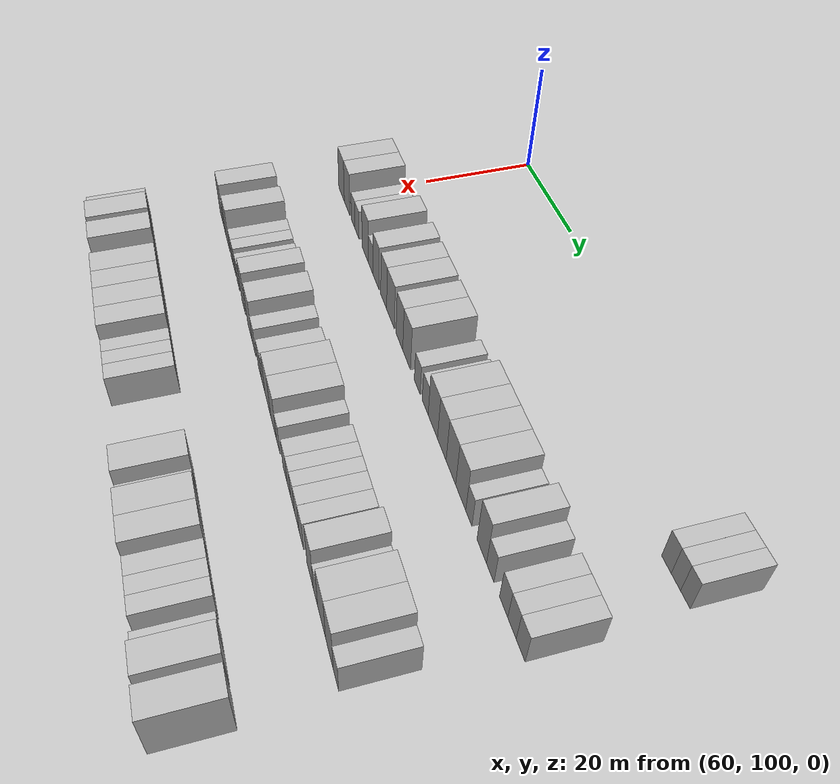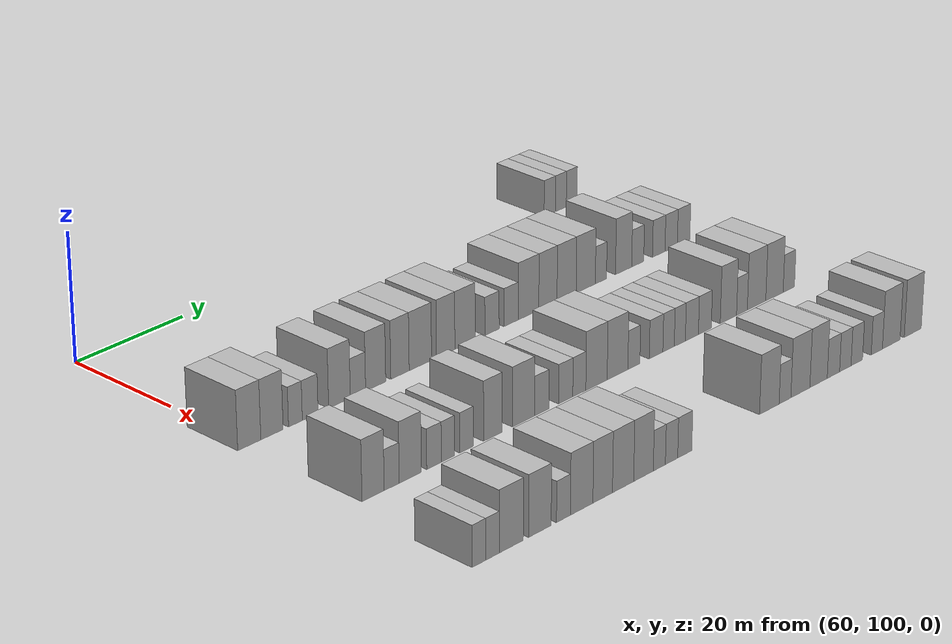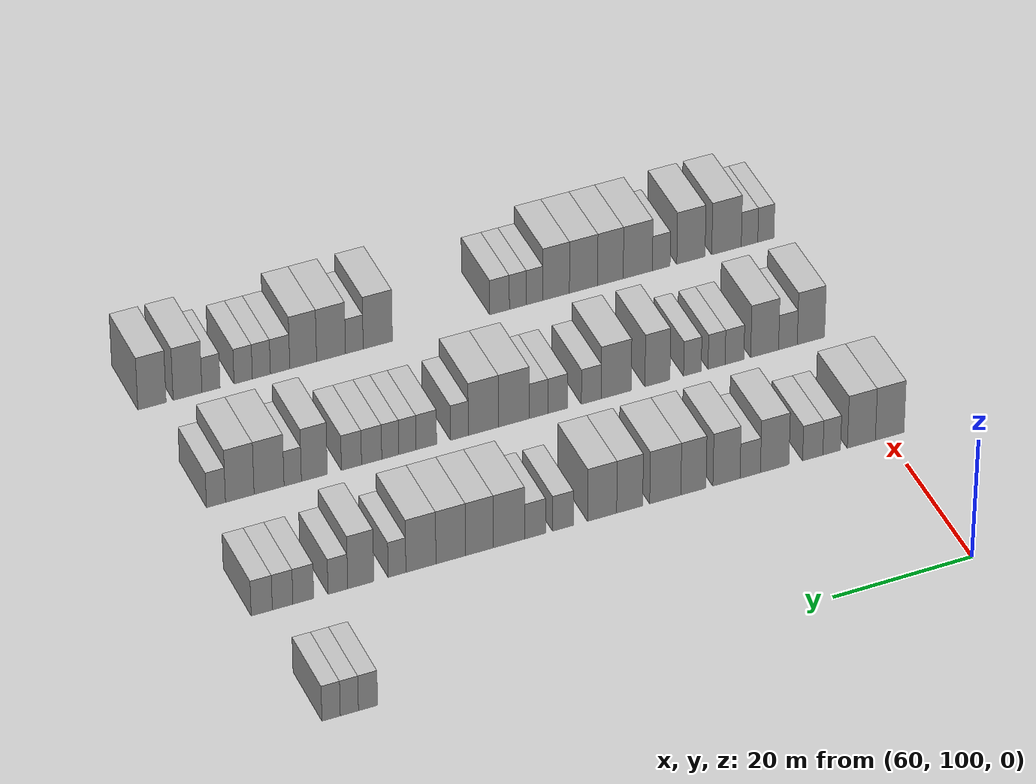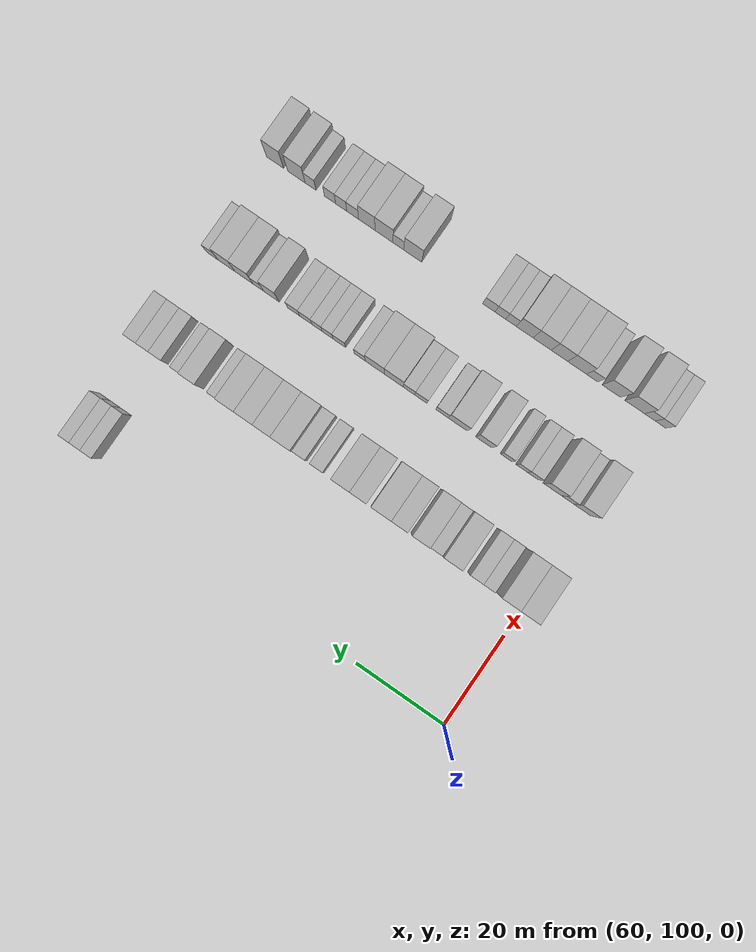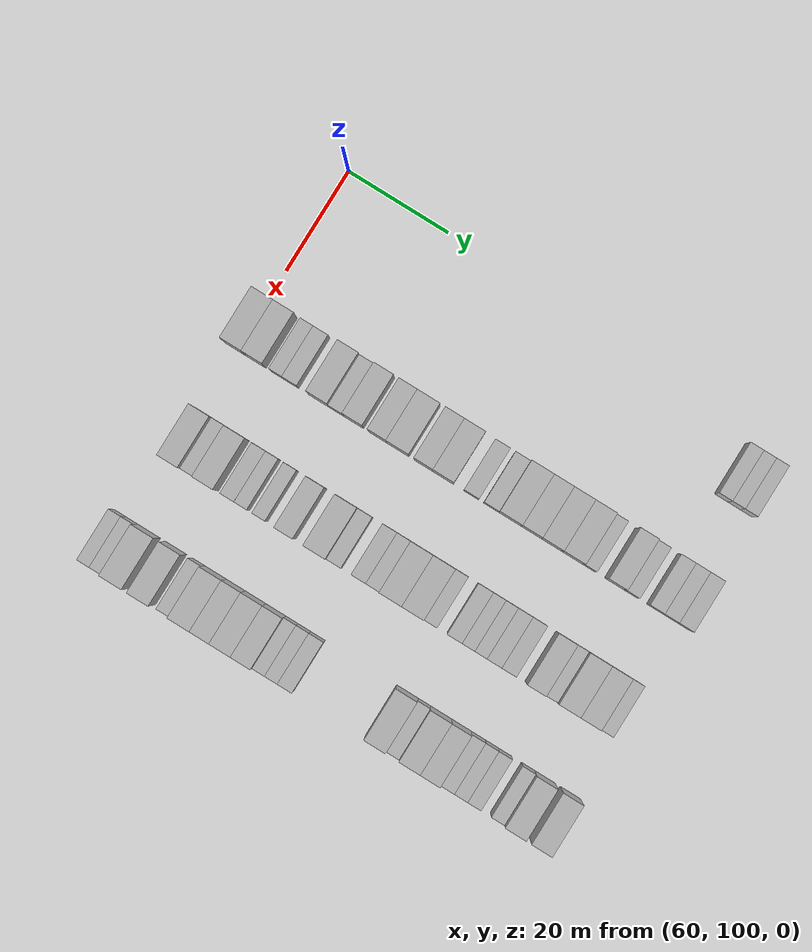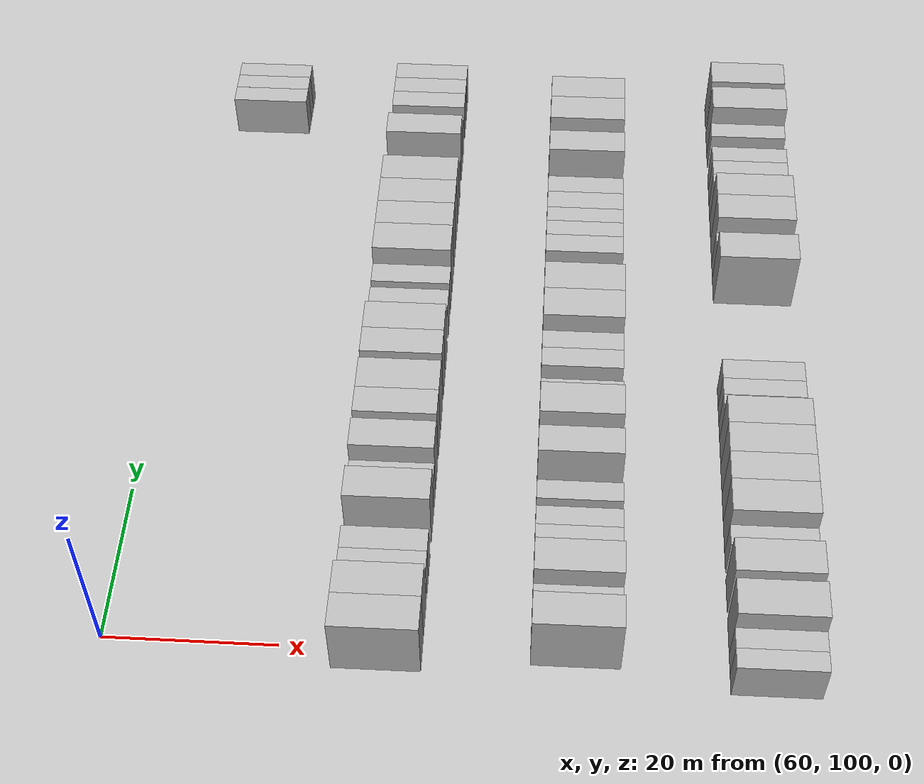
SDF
<sdf version="1.6">
 <world name="default">
  <model name="building_527">
   <static>1</static>
   <pose>69.0000 183.1466 0 0.000000 0.000000 0.000000</pose>
   <link name="link">
    <pose>0 0 3.00 0 0 0</pose>
    <collision name="collision"><geometry><box><size>10.0000 2.6130 6.0000</size></box></geometry></collision>
    <visual name="visual">
     <cast_shadows>0</cast_shadows>
     <geometry><box><size>10.0000 2.6130 6.0000</size></box></geometry>
     <material>
      <script>
       <uri>model://HANNAS_wall/materials/scripts</uri>
       <uri>model://HANNAS_wall/materials/textures</uri>
       <name>vrc/HANNAS_wall</name>
      </script>
     </material>
    </visual>
   </link>
  </model>
  <model name="building_528">
   <static>1</static>
   <pose>69.0000 185.6921 0 0.000000 0.000000 0.000000</pose>
   <link name="link">
    <pose>0 0 3.00 0 0 0</pose>
    <collision name="collision"><geometry><box><size>10.0000 2.4778 6.0000</size></box></geometry></collision>
    <visual name="visual">
     <cast_shadows>0</cast_shadows>
     <geometry><box><size>10.0000 2.4778 6.0000</size></box></geometry>
     <material>
      <script>
       <uri>model://HANNAS_wall/materials/scripts</uri>
       <uri>model://HANNAS_wall/materials/textures</uri>
       <name>vrc/HANNAS_wall</name>
      </script>
     </material>
    </visual>
   </link>
  </model>
  <model name="building_529">
   <static>1</static>
   <pose>69.0000 188.1835 0 0.000000 0.000000 0.000000</pose>
   <link name="link">
    <pose>0 0 3.00 0 0 0</pose>
    <collision name="collision"><geometry><box><size>10.0000 2.5051 6.0000</size></box></geometry></collision>
    <visual name="visual">
     <cast_shadows>0</cast_shadows>
     <geometry><box><size>10.0000 2.5051 6.0000</size></box></geometry>
     <material>
      <script>
       <uri>model://HANNAS_wall/materials/scripts</uri>
       <uri>model://HANNAS_wall/materials/textures</uri>
       <name>vrc/HANNAS_wall</name>
      </script>
     </material>
    </visual>
   </link>
  </model>
  <model name="building_701">
   <static>1</static>
   <pose>91.0000 99.6610 0 0.000000 0.000000 0.000000</pose>
   <link name="link">
    <pose>0 0 4.50 0 0 0</pose>
    <collision name="collision"><geometry><box><size>10.0000 4.1937 9.0000</size></box></geometry></collision>
    <visual name="visual">
     <cast_shadows>0</cast_shadows>
     <geometry><box><size>10.0000 4.1937 9.0000</size></box></geometry>
     <material>
      <script>
       <uri>model://HANNAS_wall/materials/scripts</uri>
       <uri>model://HANNAS_wall/materials/textures</uri>
       <name>vrc/HANNAS_wall</name>
      </script>
     </material>
    </visual>
   </link>
  </model>
  <model name="building_702">
   <static>1</static>
   <pose>91.0000 103.8036 0 0.000000 0.000000 0.000000</pose>
   <link name="link">
    <pose>0 0 4.50 0 0 0</pose>
    <collision name="collision"><geometry><box><size>10.0000 4.0915 9.0000</size></box></geometry></collision>
    <visual name="visual">
     <cast_shadows>0</cast_shadows>
     <geometry><box><size>10.0000 4.0915 9.0000</size></box></geometry>
     <material>
      <script>
       <uri>model://HANNAS_wall/materials/scripts</uri>
       <uri>model://HANNAS_wall/materials/textures</uri>
       <name>vrc/HANNAS_wall</name>
      </script>
     </material>
    </visual>
   </link>
  </model>
  <model name="building_703">
   <static>1</static>
   <pose>91.0000 108.1335 0 0.000000 0.000000 0.000000</pose>
   <link name="link">
    <pose>0 0 3.00 0 0 0</pose>
    <collision name="collision"><geometry><box><size>10.0000 2.5683 6.0000</size></box></geometry></collision>
    <visual name="visual">
     <cast_shadows>0</cast_shadows>
     <geometry><box><size>10.0000 2.5683 6.0000</size></box></geometry>
     <material>
      <script>
       <uri>model://HANNAS_wall/materials/scripts</uri>
       <uri>model://HANNAS_wall/materials/textures</uri>
       <name>vrc/HANNAS_wall</name>
      </script>
     </material>
    </visual>
   </link>
  </model>
  <model name="building_704">
   <static>1</static>
   <pose>91.0000 110.8917 0 0.000000 0.000000 0.000000</pose>
   <link name="link">
    <pose>0 0 3.00 0 0 0</pose>
    <collision name="collision"><geometry><box><size>10.0000 2.9481 6.0000</size></box></geometry></collision>
    <visual name="visual">
     <cast_shadows>0</cast_shadows>
     <geometry><box><size>10.0000 2.9481 6.0000</size></box></geometry>
     <material>
      <script>
       <uri>model://HANNAS_wall/materials/scripts</uri>
       <uri>model://HANNAS_wall/materials/textures</uri>
       <name>vrc/HANNAS_wall</name>
      </script>
     </material>
    </visual>
   </link>
  </model>
  <model name="building_705">
   <static>1</static>
   <pose>91.0000 116.4317 0 0.000000 0.000000 0.000000</pose>
   <link name="link">
    <pose>0 0 4.50 0 0 0</pose>
    <collision name="collision"><geometry><box><size>10.0000 4.1319 9.0000</size></box></geometry></collision>
    <visual name="visual">
     <cast_shadows>0</cast_shadows>
     <geometry><box><size>10.0000 4.1319 9.0000</size></box></geometry>
     <material>
      <script>
       <uri>model://HANNAS_wall/materials/scripts</uri>
       <uri>model://HANNAS_wall/materials/textures</uri>
       <name>vrc/HANNAS_wall</name>
      </script>
     </material>
    </visual>
   </link>
  </model>
  <model name="building_706">
   <static>1</static>
   <pose>91.0000 119.9699 0 0.000000 0.000000 0.000000</pose>
   <link name="link">
    <pose>0 0 3.00 0 0 0</pose>
    <collision name="collision"><geometry><box><size>10.0000 2.9445 6.0000</size></box></geometry></collision>
    <visual name="visual">
     <cast_shadows>0</cast_shadows>
     <geometry><box><size>10.0000 2.9445 6.0000</size></box></geometry>
     <material>
      <script>
       <uri>model://HANNAS_wall/materials/scripts</uri>
       <uri>model://HANNAS_wall/materials/textures</uri>
       <name>vrc/HANNAS_wall</name>
      </script>
     </material>
    </visual>
   </link>
  </model>
  <model name="building_707">
   <static>1</static>
   <pose>91.0000 123.3985 0 0.000000 0.000000 0.000000</pose>
   <link name="link">
    <pose>0 0 4.50 0 0 0</pose>
    <collision name="collision"><geometry><box><size>10.0000 3.9127 9.0000</size></box></geometry></collision>
    <visual name="visual">
     <cast_shadows>0</cast_shadows>
     <geometry><box><size>10.0000 3.9127 9.0000</size></box></geometry>
     <material>
      <script>
       <uri>model://HANNAS_wall/materials/scripts</uri>
       <uri>model://HANNAS_wall/materials/textures</uri>
       <name>vrc/HANNAS_wall</name>
      </script>
     </material>
    </visual>
   </link>
  </model>
  <model name="building_708">
   <static>1</static>
   <pose>91.0000 128.1646 0 0.000000 0.000000 0.000000</pose>
   <link name="link">
    <pose>0 0 4.50 0 0 0</pose>
    <collision name="collision"><geometry><box><size>10.0000 3.6194 9.0000</size></box></geometry></collision>
    <visual name="visual">
     <cast_shadows>0</cast_shadows>
     <geometry><box><size>10.0000 3.6194 9.0000</size></box></geometry>
     <material>
      <script>
       <uri>model://HANNAS_wall/materials/scripts</uri>
       <uri>model://HANNAS_wall/materials/textures</uri>
       <name>vrc/HANNAS_wall</name>
      </script>
     </material>
    </visual>
   </link>
  </model>
  <model name="building_709">
   <static>1</static>
   <pose>91.0000 132.2053 0 0.000000 0.000000 0.000000</pose>
   <link name="link">
    <pose>0 0 4.50 0 0 0</pose>
    <collision name="collision"><geometry><box><size>10.0000 4.4620 9.0000</size></box></geometry></collision>
    <visual name="visual">
     <cast_shadows>0</cast_shadows>
     <geometry><box><size>10.0000 4.4620 9.0000</size></box></geometry>
     <material>
      <script>
       <uri>model://HANNAS_wall/materials/scripts</uri>
       <uri>model://HANNAS_wall/materials/textures</uri>
       <name>vrc/HANNAS_wall</name>
      </script>
     </material>
    </visual>
   </link>
  </model>
  <model name="building_710">
   <static>1</static>
   <pose>91.0000 137.3006 0 0.000000 0.000000 0.000000</pose>
   <link name="link">
    <pose>0 0 4.50 0 0 0</pose>
    <collision name="collision"><geometry><box><size>10.0000 3.7286 9.0000</size></box></geometry></collision>
    <visual name="visual">
     <cast_shadows>0</cast_shadows>
     <geometry><box><size>10.0000 3.7286 9.0000</size></box></geometry>
     <material>
      <script>
       <uri>model://HANNAS_wall/materials/scripts</uri>
       <uri>model://HANNAS_wall/materials/textures</uri>
       <name>vrc/HANNAS_wall</name>
      </script>
     </material>
    </visual>
   </link>
  </model>
  <model name="building_711">
   <static>1</static>
   <pose>91.0000 141.2422 0 0.000000 0.000000 0.000000</pose>
   <link name="link">
    <pose>0 0 4.50 0 0 0</pose>
    <collision name="collision"><geometry><box><size>10.0000 4.1545 9.0000</size></box></geometry></collision>
    <visual name="visual">
     <cast_shadows>0</cast_shadows>
     <geometry><box><size>10.0000 4.1545 9.0000</size></box></geometry>
     <material>
      <script>
       <uri>model://HANNAS_wall/materials/scripts</uri>
       <uri>model://HANNAS_wall/materials/textures</uri>
       <name>vrc/HANNAS_wall</name>
      </script>
     </material>
    </visual>
   </link>
  </model>
  <model name="building_712">
   <static>1</static>
   <pose>91.0000 146.8055 0 0.000000 0.000000 0.000000</pose>
   <link name="link">
    <pose>0 0 3.00 0 0 0</pose>
    <collision name="collision"><geometry><box><size>10.0000 2.9721 6.0000</size></box></geometry></collision>
    <visual name="visual">
     <cast_shadows>0</cast_shadows>
     <geometry><box><size>10.0000 2.9721 6.0000</size></box></geometry>
     <material>
      <script>
       <uri>model://HANNAS_wall/materials/scripts</uri>
       <uri>model://HANNAS_wall/materials/textures</uri>
       <name>vrc/HANNAS_wall</name>
      </script>
     </material>
    </visual>
   </link>
  </model>
  <model name="building_713">
   <static>1</static>
   <pose>91.0000 150.7829 0 0.000000 0.000000 0.000000</pose>
   <link name="link">
    <pose>0 0 3.00 0 0 0</pose>
    <collision name="collision"><geometry><box><size>10.0000 2.9826 6.0000</size></box></geometry></collision>
    <visual name="visual">
     <cast_shadows>0</cast_shadows>
     <geometry><box><size>10.0000 2.9826 6.0000</size></box></geometry>
     <material>
      <script>
       <uri>model://HANNAS_wall/materials/scripts</uri>
       <uri>model://HANNAS_wall/materials/textures</uri>
       <name>vrc/HANNAS_wall</name>
      </script>
     </material>
    </visual>
   </link>
  </model>
  <model name="building_714">
   <static>1</static>
   <pose>91.0000 154.4769 0 0.000000 0.000000 0.000000</pose>
   <link name="link">
    <pose>0 0 4.50 0 0 0</pose>
    <collision name="collision"><geometry><box><size>10.0000 4.4055 9.0000</size></box></geometry></collision>
    <visual name="visual">
     <cast_shadows>0</cast_shadows>
     <geometry><box><size>10.0000 4.4055 9.0000</size></box></geometry>
     <material>
      <script>
       <uri>model://HANNAS_wall/materials/scripts</uri>
       <uri>model://HANNAS_wall/materials/textures</uri>
       <name>vrc/HANNAS_wall</name>
      </script>
     </material>
    </visual>
   </link>
  </model>
  <model name="building_715">
   <static>1</static>
   <pose>91.0000 158.6403 0 0.000000 0.000000 0.000000</pose>
   <link name="link">
    <pose>0 0 4.50 0 0 0</pose>
    <collision name="collision"><geometry><box><size>10.0000 3.9213 9.0000</size></box></geometry></collision>
    <visual name="visual">
     <cast_shadows>0</cast_shadows>
     <geometry><box><size>10.0000 3.9213 9.0000</size></box></geometry>
     <material>
      <script>
       <uri>model://HANNAS_wall/materials/scripts</uri>
       <uri>model://HANNAS_wall/materials/textures</uri>
       <name>vrc/HANNAS_wall</name>
      </script>
     </material>
    </visual>
   </link>
  </model>
  <model name="building_716">
   <static>1</static>
   <pose>91.0000 162.6818 0 0.000000 0.000000 0.000000</pose>
   <link name="link">
    <pose>0 0 4.50 0 0 0</pose>
    <collision name="collision"><geometry><box><size>10.0000 4.1617 9.0000</size></box></geometry></collision>
    <visual name="visual">
     <cast_shadows>0</cast_shadows>
     <geometry><box><size>10.0000 4.1617 9.0000</size></box></geometry>
     <material>
      <script>
       <uri>model://HANNAS_wall/materials/scripts</uri>
       <uri>model://HANNAS_wall/materials/textures</uri>
       <name>vrc/HANNAS_wall</name>
      </script>
     </material>
    </visual>
   </link>
  </model>
  <model name="building_717">
   <static>1</static>
   <pose>91.0000 166.8731 0 0.000000 0.000000 0.000000</pose>
   <link name="link">
    <pose>0 0 4.50 0 0 0</pose>
    <collision name="collision"><geometry><box><size>10.0000 4.2209 9.0000</size></box></geometry></collision>
    <visual name="visual">
     <cast_shadows>0</cast_shadows>
     <geometry><box><size>10.0000 4.2209 9.0000</size></box></geometry>
     <material>
      <script>
       <uri>model://HANNAS_wall/materials/scripts</uri>
       <uri>model://HANNAS_wall/materials/textures</uri>
       <name>vrc/HANNAS_wall</name>
      </script>
     </material>
    </visual>
   </link>
  </model>
  <model name="building_718">
   <static>1</static>
   <pose>91.0000 170.2258 0 0.000000 0.000000 0.000000</pose>
   <link name="link">
    <pose>0 0 3.00 0 0 0</pose>
    <collision name="collision"><geometry><box><size>10.0000 2.4843 6.0000</size></box></geometry></collision>
    <visual name="visual">
     <cast_shadows>0</cast_shadows>
     <geometry><box><size>10.0000 2.4843 6.0000</size></box></geometry>
     <material>
      <script>
       <uri>model://HANNAS_wall/materials/scripts</uri>
       <uri>model://HANNAS_wall/materials/textures</uri>
       <name>vrc/HANNAS_wall</name>
      </script>
     </material>
    </visual>
   </link>
  </model>
  <model name="building_719">
   <static>1</static>
   <pose>91.0000 175.2902 0 0.000000 0.000000 0.000000</pose>
   <link name="link">
    <pose>0 0 4.50 0 0 0</pose>
    <collision name="collision"><geometry><box><size>10.0000 3.6445 9.0000</size></box></geometry></collision>
    <visual name="visual">
     <cast_shadows>0</cast_shadows>
     <geometry><box><size>10.0000 3.6445 9.0000</size></box></geometry>
     <material>
      <script>
       <uri>model://HANNAS_wall/materials/scripts</uri>
       <uri>model://HANNAS_wall/materials/textures</uri>
       <name>vrc/HANNAS_wall</name>
      </script>
     </material>
    </visual>
   </link>
  </model>
  <model name="building_720">
   <static>1</static>
   <pose>91.0000 178.4821 0 0.000000 0.000000 0.000000</pose>
   <link name="link">
    <pose>0 0 3.00 0 0 0</pose>
    <collision name="collision"><geometry><box><size>10.0000 2.7392 6.0000</size></box></geometry></collision>
    <visual name="visual">
     <cast_shadows>0</cast_shadows>
     <geometry><box><size>10.0000 2.7392 6.0000</size></box></geometry>
     <material>
      <script>
       <uri>model://HANNAS_wall/materials/scripts</uri>
       <uri>model://HANNAS_wall/materials/textures</uri>
       <name>vrc/HANNAS_wall</name>
      </script>
     </material>
    </visual>
   </link>
  </model>
  <model name="building_721">
   <static>1</static>
   <pose>91.0000 183.2932 0 0.000000 0.000000 0.000000</pose>
   <link name="link">
    <pose>0 0 3.00 0 0 0</pose>
    <collision name="collision"><geometry><box><size>10.0000 2.8830 6.0000</size></box></geometry></collision>
    <visual name="visual">
     <cast_shadows>0</cast_shadows>
     <geometry><box><size>10.0000 2.8830 6.0000</size></box></geometry>
     <material>
      <script>
       <uri>model://HANNAS_wall/materials/scripts</uri>
       <uri>model://HANNAS_wall/materials/textures</uri>
       <name>vrc/HANNAS_wall</name>
      </script>
     </material>
    </visual>
   </link>
  </model>
  <model name="building_722">
   <static>1</static>
   <pose>91.0000 186.1623 0 0.000000 0.000000 0.000000</pose>
   <link name="link">
    <pose>0 0 3.00 0 0 0</pose>
    <collision name="collision"><geometry><box><size>10.0000 2.8553 6.0000</size></box></geometry></collision>
    <visual name="visual">
     <cast_shadows>0</cast_shadows>
     <geometry><box><size>10.0000 2.8553 6.0000</size></box></geometry>
     <material>
      <script>
       <uri>model://HANNAS_wall/materials/scripts</uri>
       <uri>model://HANNAS_wall/materials/textures</uri>
       <name>vrc/HANNAS_wall</name>
      </script>
     </material>
    </visual>
   </link>
  </model>
  <model name="building_723">
   <static>1</static>
   <pose>91.0000 189.0524 0 0.000000 0.000000 0.000000</pose>
   <link name="link">
    <pose>0 0 3.00 0 0 0</pose>
    <collision name="collision"><geometry><box><size>10.0000 2.9248 6.0000</size></box></geometry></collision>
    <visual name="visual">
     <cast_shadows>0</cast_shadows>
     <geometry><box><size>10.0000 2.9248 6.0000</size></box></geometry>
     <material>
      <script>
       <uri>model://HANNAS_wall/materials/scripts</uri>
       <uri>model://HANNAS_wall/materials/textures</uri>
       <name>vrc/HANNAS_wall</name>
      </script>
     </material>
    </visual>
   </link>
  </model>
  <model name="building_880">
   <static>1</static>
   <pose>113.0000 101.0463 0 0.000000 0.000000 0.000000</pose>
   <link name="link">
    <pose>0 0 4.50 0 0 0</pose>
    <collision name="collision"><geometry><box><size>10.0000 4.0471 9.0000</size></box></geometry></collision>
    <visual name="visual">
     <cast_shadows>0</cast_shadows>
     <geometry><box><size>10.0000 4.0471 9.0000</size></box></geometry>
     <material>
      <script>
       <uri>model://HANNAS_wall/materials/scripts</uri>
       <uri>model://HANNAS_wall/materials/textures</uri>
       <name>vrc/HANNAS_wall</name>
      </script>
     </material>
    </visual>
   </link>
  </model>
  <model name="building_881">
   <static>1</static>
   <pose>113.0000 104.4545 0 0.000000 0.000000 0.000000</pose>
   <link name="link">
    <pose>0 0 3.00 0 0 0</pose>
    <collision name="collision"><geometry><box><size>10.0000 2.7692 6.0000</size></box></geometry></collision>
    <visual name="visual">
     <cast_shadows>0</cast_shadows>
     <geometry><box><size>10.0000 2.7692 6.0000</size></box></geometry>
     <material>
      <script>
       <uri>model://HANNAS_wall/materials/scripts</uri>
       <uri>model://HANNAS_wall/materials/textures</uri>
       <name>vrc/HANNAS_wall</name>
      </script>
     </material>
    </visual>
   </link>
  </model>
  <model name="building_882">
   <static>1</static>
   <pose>113.0000 107.8996 0 0.000000 0.000000 0.000000</pose>
   <link name="link">
    <pose>0 0 4.50 0 0 0</pose>
    <collision name="collision"><geometry><box><size>10.0000 4.1210 9.0000</size></box></geometry></collision>
    <visual name="visual">
     <cast_shadows>0</cast_shadows>
     <geometry><box><size>10.0000 4.1210 9.0000</size></box></geometry>
     <material>
      <script>
       <uri>model://HANNAS_wall/materials/scripts</uri>
       <uri>model://HANNAS_wall/materials/textures</uri>
       <name>vrc/HANNAS_wall</name>
      </script>
     </material>
    </visual>
   </link>
  </model>
  <model name="building_883">
   <static>1</static>
   <pose>113.0000 112.3425 0 0.000000 0.000000 0.000000</pose>
   <link name="link">
    <pose>0 0 3.00 0 0 0</pose>
    <collision name="collision"><geometry><box><size>10.0000 2.7648 6.0000</size></box></geometry></collision>
    <visual name="visual">
     <cast_shadows>0</cast_shadows>
     <geometry><box><size>10.0000 2.7648 6.0000</size></box></geometry>
     <material>
      <script>
       <uri>model://HANNAS_wall/materials/scripts</uri>
       <uri>model://HANNAS_wall/materials/textures</uri>
       <name>vrc/HANNAS_wall</name>
      </script>
     </material>
    </visual>
   </link>
  </model>
  <model name="building_884">
   <static>1</static>
   <pose>113.0000 114.9780 0 0.000000 0.000000 0.000000</pose>
   <link name="link">
    <pose>0 0 3.00 0 0 0</pose>
    <collision name="collision"><geometry><box><size>10.0000 2.5061 6.0000</size></box></geometry></collision>
    <visual name="visual">
     <cast_shadows>0</cast_shadows>
     <geometry><box><size>10.0000 2.5061 6.0000</size></box></geometry>
     <material>
      <script>
       <uri>model://HANNAS_wall/materials/scripts</uri>
       <uri>model://HANNAS_wall/materials/textures</uri>
       <name>vrc/HANNAS_wall</name>
      </script>
     </material>
    </visual>
   </link>
  </model>
  <model name="building_885">
   <static>1</static>
   <pose>113.0000 118.5280 0 0.000000 0.000000 0.000000</pose>
   <link name="link">
    <pose>0 0 3.00 0 0 0</pose>
    <collision name="collision"><geometry><box><size>10.0000 2.5939 6.0000</size></box></geometry></collision>
    <visual name="visual">
     <cast_shadows>0</cast_shadows>
     <geometry><box><size>10.0000 2.5939 6.0000</size></box></geometry>
     <material>
      <script>
       <uri>model://HANNAS_wall/materials/scripts</uri>
       <uri>model://HANNAS_wall/materials/textures</uri>
       <name>vrc/HANNAS_wall</name>
      </script>
     </material>
    </visual>
   </link>
  </model>
  <model name="building_886">
   <static>1</static>
   <pose>113.0000 123.6521 0 0.000000 0.000000 0.000000</pose>
   <link name="link">
    <pose>0 0 4.50 0 0 0</pose>
    <collision name="collision"><geometry><box><size>10.0000 3.6543 9.0000</size></box></geometry></collision>
    <visual name="visual">
     <cast_shadows>0</cast_shadows>
     <geometry><box><size>10.0000 3.6543 9.0000</size></box></geometry>
     <material>
      <script>
       <uri>model://HANNAS_wall/materials/scripts</uri>
       <uri>model://HANNAS_wall/materials/textures</uri>
       <name>vrc/HANNAS_wall</name>
      </script>
     </material>
    </visual>
   </link>
  </model>
  <model name="building_887">
   <static>1</static>
   <pose>113.0000 129.6610 0 0.000000 0.000000 0.000000</pose>
   <link name="link">
    <pose>0 0 4.50 0 0 0</pose>
    <collision name="collision"><geometry><box><size>10.0000 4.3635 9.0000</size></box></geometry></collision>
    <visual name="visual">
     <cast_shadows>0</cast_shadows>
     <geometry><box><size>10.0000 4.3635 9.0000</size></box></geometry>
     <material>
      <script>
       <uri>model://HANNAS_wall/materials/scripts</uri>
       <uri>model://HANNAS_wall/materials/textures</uri>
       <name>vrc/HANNAS_wall</name>
      </script>
     </material>
    </visual>
   </link>
  </model>
  <model name="building_888">
   <static>1</static>
   <pose>113.0000 133.2889 0 0.000000 0.000000 0.000000</pose>
   <link name="link">
    <pose>0 0 3.00 0 0 0</pose>
    <collision name="collision"><geometry><box><size>10.0000 2.8923 6.0000</size></box></geometry></collision>
    <visual name="visual">
     <cast_shadows>0</cast_shadows>
     <geometry><box><size>10.0000 2.8923 6.0000</size></box></geometry>
     <material>
      <script>
       <uri>model://HANNAS_wall/materials/scripts</uri>
       <uri>model://HANNAS_wall/materials/textures</uri>
       <name>vrc/HANNAS_wall</name>
      </script>
     </material>
    </visual>
   </link>
  </model>
  <model name="building_889">
   <static>1</static>
   <pose>113.0000 138.1705 0 0.000000 0.000000 0.000000</pose>
   <link name="link">
    <pose>0 0 3.00 0 0 0</pose>
    <collision name="collision"><geometry><box><size>10.0000 2.8710 6.0000</size></box></geometry></collision>
    <visual name="visual">
     <cast_shadows>0</cast_shadows>
     <geometry><box><size>10.0000 2.8710 6.0000</size></box></geometry>
     <material>
      <script>
       <uri>model://HANNAS_wall/materials/scripts</uri>
       <uri>model://HANNAS_wall/materials/textures</uri>
       <name>vrc/HANNAS_wall</name>
      </script>
     </material>
    </visual>
   </link>
  </model>
  <model name="building_890">
   <static>1</static>
   <pose>113.0000 140.9485 0 0.000000 0.000000 0.000000</pose>
   <link name="link">
    <pose>0 0 3.00 0 0 0</pose>
    <collision name="collision"><geometry><box><size>10.0000 2.6849 6.0000</size></box></geometry></collision>
    <visual name="visual">
     <cast_shadows>0</cast_shadows>
     <geometry><box><size>10.0000 2.6849 6.0000</size></box></geometry>
     <material>
      <script>
       <uri>model://HANNAS_wall/materials/scripts</uri>
       <uri>model://HANNAS_wall/materials/textures</uri>
       <name>vrc/HANNAS_wall</name>
      </script>
     </material>
    </visual>
   </link>
  </model>
  <model name="building_891">
   <static>1</static>
   <pose>113.0000 144.5055 0 0.000000 0.000000 0.000000</pose>
   <link name="link">
    <pose>0 0 4.50 0 0 0</pose>
    <collision name="collision"><geometry><box><size>10.0000 4.4291 9.0000</size></box></geometry></collision>
    <visual name="visual">
     <cast_shadows>0</cast_shadows>
     <geometry><box><size>10.0000 4.4291 9.0000</size></box></geometry>
     <material>
      <script>
       <uri>model://HANNAS_wall/materials/scripts</uri>
       <uri>model://HANNAS_wall/materials/textures</uri>
       <name>vrc/HANNAS_wall</name>
      </script>
     </material>
    </visual>
   </link>
  </model>
  <model name="building_892">
   <static>1</static>
   <pose>113.0000 148.8979 0 0.000000 0.000000 0.000000</pose>
   <link name="link">
    <pose>0 0 4.50 0 0 0</pose>
    <collision name="collision"><geometry><box><size>10.0000 4.3558 9.0000</size></box></geometry></collision>
    <visual name="visual">
     <cast_shadows>0</cast_shadows>
     <geometry><box><size>10.0000 4.3558 9.0000</size></box></geometry>
     <material>
      <script>
       <uri>model://HANNAS_wall/materials/scripts</uri>
       <uri>model://HANNAS_wall/materials/textures</uri>
       <name>vrc/HANNAS_wall</name>
      </script>
     </material>
    </visual>
   </link>
  </model>
  <model name="building_893">
   <static>1</static>
   <pose>113.0000 152.3535 0 0.000000 0.000000 0.000000</pose>
   <link name="link">
    <pose>0 0 3.00 0 0 0</pose>
    <collision name="collision"><geometry><box><size>10.0000 2.5554 6.0000</size></box></geometry></collision>
    <visual name="visual">
     <cast_shadows>0</cast_shadows>
     <geometry><box><size>10.0000 2.5554 6.0000</size></box></geometry>
     <material>
      <script>
       <uri>model://HANNAS_wall/materials/scripts</uri>
       <uri>model://HANNAS_wall/materials/textures</uri>
       <name>vrc/HANNAS_wall</name>
      </script>
     </material>
    </visual>
   </link>
  </model>
  <model name="building_894">
   <static>1</static>
   <pose>113.0000 157.0996 0 0.000000 0.000000 0.000000</pose>
   <link name="link">
    <pose>0 0 3.00 0 0 0</pose>
    <collision name="collision"><geometry><box><size>10.0000 2.9368 6.0000</size></box></geometry></collision>
    <visual name="visual">
     <cast_shadows>0</cast_shadows>
     <geometry><box><size>10.0000 2.9368 6.0000</size></box></geometry>
     <material>
      <script>
       <uri>model://HANNAS_wall/materials/scripts</uri>
       <uri>model://HANNAS_wall/materials/textures</uri>
       <name>vrc/HANNAS_wall</name>
      </script>
     </material>
    </visual>
   </link>
  </model>
  <model name="building_895">
   <static>1</static>
   <pose>113.0000 159.8069 0 0.000000 0.000000 0.000000</pose>
   <link name="link">
    <pose>0 0 3.00 0 0 0</pose>
    <collision name="collision"><geometry><box><size>10.0000 2.4778 6.0000</size></box></geometry></collision>
    <visual name="visual">
     <cast_shadows>0</cast_shadows>
     <geometry><box><size>10.0000 2.4778 6.0000</size></box></geometry>
     <material>
      <script>
       <uri>model://HANNAS_wall/materials/scripts</uri>
       <uri>model://HANNAS_wall/materials/textures</uri>
       <name>vrc/HANNAS_wall</name>
      </script>
     </material>
    </visual>
   </link>
  </model>
  <model name="building_896">
   <static>1</static>
   <pose>113.0000 162.2559 0 0.000000 0.000000 0.000000</pose>
   <link name="link">
    <pose>0 0 3.00 0 0 0</pose>
    <collision name="collision"><geometry><box><size>10.0000 2.4201 6.0000</size></box></geometry></collision>
    <visual name="visual">
     <cast_shadows>0</cast_shadows>
     <geometry><box><size>10.0000 2.4201 6.0000</size></box></geometry>
     <material>
      <script>
       <uri>model://HANNAS_wall/materials/scripts</uri>
       <uri>model://HANNAS_wall/materials/textures</uri>
       <name>vrc/HANNAS_wall</name>
      </script>
     </material>
    </visual>
   </link>
  </model>
  <model name="building_897">
   <static>1</static>
   <pose>113.0000 164.9074 0 0.000000 0.000000 0.000000</pose>
   <link name="link">
    <pose>0 0 3.00 0 0 0</pose>
    <collision name="collision"><geometry><box><size>10.0000 2.8828 6.0000</size></box></geometry></collision>
    <visual name="visual">
     <cast_shadows>0</cast_shadows>
     <geometry><box><size>10.0000 2.8828 6.0000</size></box></geometry>
     <material>
      <script>
       <uri>model://HANNAS_wall/materials/scripts</uri>
       <uri>model://HANNAS_wall/materials/textures</uri>
       <name>vrc/HANNAS_wall</name>
      </script>
     </material>
    </visual>
   </link>
  </model>
  <model name="building_898">
   <static>1</static>
   <pose>113.0000 167.7784 0 0.000000 0.000000 0.000000</pose>
   <link name="link">
    <pose>0 0 3.00 0 0 0</pose>
    <collision name="collision"><geometry><box><size>10.0000 2.8591 6.0000</size></box></geometry></collision>
    <visual name="visual">
     <cast_shadows>0</cast_shadows>
     <geometry><box><size>10.0000 2.8591 6.0000</size></box></geometry>
     <material>
      <script>
       <uri>model://HANNAS_wall/materials/scripts</uri>
       <uri>model://HANNAS_wall/materials/textures</uri>
       <name>vrc/HANNAS_wall</name>
      </script>
     </material>
    </visual>
   </link>
  </model>
  <model name="building_899">
   <static>1</static>
   <pose>113.0000 173.0470 0 0.000000 0.000000 0.000000</pose>
   <link name="link">
    <pose>0 0 4.50 0 0 0</pose>
    <collision name="collision"><geometry><box><size>10.0000 3.6781 9.0000</size></box></geometry></collision>
    <visual name="visual">
     <cast_shadows>0</cast_shadows>
     <geometry><box><size>10.0000 3.6781 9.0000</size></box></geometry>
     <material>
      <script>
       <uri>model://HANNAS_wall/materials/scripts</uri>
       <uri>model://HANNAS_wall/materials/textures</uri>
       <name>vrc/HANNAS_wall</name>
      </script>
     </material>
    </visual>
   </link>
  </model>
  <model name="building_900">
   <static>1</static>
   <pose>113.0000 176.1113 0 0.000000 0.000000 0.000000</pose>
   <link name="link">
    <pose>0 0 3.00 0 0 0</pose>
    <collision name="collision"><geometry><box><size>10.0000 2.4504 6.0000</size></box></geometry></collision>
    <visual name="visual">
     <cast_shadows>0</cast_shadows>
     <geometry><box><size>10.0000 2.4504 6.0000</size></box></geometry>
     <material>
      <script>
       <uri>model://HANNAS_wall/materials/scripts</uri>
       <uri>model://HANNAS_wall/materials/textures</uri>
       <name>vrc/HANNAS_wall</name>
      </script>
     </material>
    </visual>
   </link>
  </model>
  <model name="building_901">
   <static>1</static>
   <pose>113.0000 179.4534 0 0.000000 0.000000 0.000000</pose>
   <link name="link">
    <pose>0 0 4.50 0 0 0</pose>
    <collision name="collision"><geometry><box><size>10.0000 4.2338 9.0000</size></box></geometry></collision>
    <visual name="visual">
     <cast_shadows>0</cast_shadows>
     <geometry><box><size>10.0000 4.2338 9.0000</size></box></geometry>
     <material>
      <script>
       <uri>model://HANNAS_wall/materials/scripts</uri>
       <uri>model://HANNAS_wall/materials/textures</uri>
       <name>vrc/HANNAS_wall</name>
      </script>
     </material>
    </visual>
   </link>
  </model>
  <model name="building_902">
   <static>1</static>
   <pose>113.0000 183.5857 0 0.000000 0.000000 0.000000</pose>
   <link name="link">
    <pose>0 0 4.50 0 0 0</pose>
    <collision name="collision"><geometry><box><size>10.0000 4.0309 9.0000</size></box></geometry></collision>
    <visual name="visual">
     <cast_shadows>0</cast_shadows>
     <geometry><box><size>10.0000 4.0309 9.0000</size></box></geometry>
     <material>
      <script>
       <uri>model://HANNAS_wall/materials/scripts</uri>
       <uri>model://HANNAS_wall/materials/textures</uri>
       <name>vrc/HANNAS_wall</name>
      </script>
     </material>
    </visual>
   </link>
  </model>
  <model name="building_903">
   <static>1</static>
   <pose>113.0000 186.9311 0 0.000000 0.000000 0.000000</pose>
   <link name="link">
    <pose>0 0 3.00 0 0 0</pose>
    <collision name="collision"><geometry><box><size>10.0000 2.6598 6.0000</size></box></geometry></collision>
    <visual name="visual">
     <cast_shadows>0</cast_shadows>
     <geometry><box><size>10.0000 2.6598 6.0000</size></box></geometry>
     <material>
      <script>
       <uri>model://HANNAS_wall/materials/scripts</uri>
       <uri>model://HANNAS_wall/materials/textures</uri>
       <name>vrc/HANNAS_wall</name>
      </script>
     </material>
    </visual>
   </link>
  </model>
  <model name="building_1081">
   <static>1</static>
   <pose>135.0000 97.7276 0 0.000000 0.000000 0.000000</pose>
   <link name="link">
    <pose>0 0 3.00 0 0 0</pose>
    <collision name="collision"><geometry><box><size>10.0000 2.4272 6.0000</size></box></geometry></collision>
    <visual name="visual">
     <cast_shadows>0</cast_shadows>
     <geometry><box><size>10.0000 2.4272 6.0000</size></box></geometry>
     <material>
      <script>
       <uri>model://HANNAS_wall/materials/scripts</uri>
       <uri>model://HANNAS_wall/materials/textures</uri>
       <name>vrc/HANNAS_wall</name>
      </script>
     </material>
    </visual>
   </link>
  </model>
  <model name="building_1082">
   <static>1</static>
   <pose>135.0000 100.1840 0 0.000000 0.000000 0.000000</pose>
   <link name="link">
    <pose>0 0 3.00 0 0 0</pose>
    <collision name="collision"><geometry><box><size>10.0000 2.4856 6.0000</size></box></geometry></collision>
    <visual name="visual">
     <cast_shadows>0</cast_shadows>
     <geometry><box><size>10.0000 2.4856 6.0000</size></box></geometry>
     <material>
      <script>
       <uri>model://HANNAS_wall/materials/scripts</uri>
       <uri>model://HANNAS_wall/materials/textures</uri>
       <name>vrc/HANNAS_wall</name>
      </script>
     </material>
    </visual>
   </link>
  </model>
  <model name="building_1083">
   <static>1</static>
   <pose>135.0000 103.6456 0 0.000000 0.000000 0.000000</pose>
   <link name="link">
    <pose>0 0 4.50 0 0 0</pose>
    <collision name="collision"><geometry><box><size>10.0000 4.4378 9.0000</size></box></geometry></collision>
    <visual name="visual">
     <cast_shadows>0</cast_shadows>
     <geometry><box><size>10.0000 4.4378 9.0000</size></box></geometry>
     <material>
      <script>
       <uri>model://HANNAS_wall/materials/scripts</uri>
       <uri>model://HANNAS_wall/materials/textures</uri>
       <name>vrc/HANNAS_wall</name>
      </script>
     </material>
    </visual>
   </link>
  </model>
  <model name="building_1084">
   <static>1</static>
   <pose>135.0000 108.9768 0 0.000000 0.000000 0.000000</pose>
   <link name="link">
    <pose>0 0 4.50 0 0 0</pose>
    <collision name="collision"><geometry><box><size>10.0000 4.2247 9.0000</size></box></geometry></collision>
    <visual name="visual">
     <cast_shadows>0</cast_shadows>
     <geometry><box><size>10.0000 4.2247 9.0000</size></box></geometry>
     <material>
      <script>
       <uri>model://HANNAS_wall/materials/scripts</uri>
       <uri>model://HANNAS_wall/materials/textures</uri>
       <name>vrc/HANNAS_wall</name>
      </script>
     </material>
    </visual>
   </link>
  </model>
  <model name="building_1085">
   <static>1</static>
   <pose>135.0000 113.4091 0 0.000000 0.000000 0.000000</pose>
   <link name="link">
    <pose>0 0 3.00 0 0 0</pose>
    <collision name="collision"><geometry><box><size>10.0000 2.6398 6.0000</size></box></geometry></collision>
    <visual name="visual">
     <cast_shadows>0</cast_shadows>
     <geometry><box><size>10.0000 2.6398 6.0000</size></box></geometry>
     <material>
      <script>
       <uri>model://HANNAS_wall/materials/scripts</uri>
       <uri>model://HANNAS_wall/materials/textures</uri>
       <name>vrc/HANNAS_wall</name>
      </script>
     </material>
    </visual>
   </link>
  </model>
  <model name="building_1086">
   <static>1</static>
   <pose>135.0000 116.8978 0 0.000000 0.000000 0.000000</pose>
   <link name="link">
    <pose>0 0 4.50 0 0 0</pose>
    <collision name="collision"><geometry><box><size>10.0000 4.3377 9.0000</size></box></geometry></collision>
    <visual name="visual">
     <cast_shadows>0</cast_shadows>
     <geometry><box><size>10.0000 4.3377 9.0000</size></box></geometry>
     <material>
      <script>
       <uri>model://HANNAS_wall/materials/scripts</uri>
       <uri>model://HANNAS_wall/materials/textures</uri>
       <name>vrc/HANNAS_wall</name>
      </script>
     </material>
    </visual>
   </link>
  </model>
  <model name="building_1087">
   <static>1</static>
   <pose>135.0000 120.9689 0 0.000000 0.000000 0.000000</pose>
   <link name="link">
    <pose>0 0 4.50 0 0 0</pose>
    <collision name="collision"><geometry><box><size>10.0000 3.8044 9.0000</size></box></geometry></collision>
    <visual name="visual">
     <cast_shadows>0</cast_shadows>
     <geometry><box><size>10.0000 3.8044 9.0000</size></box></geometry>
     <material>
      <script>
       <uri>model://HANNAS_wall/materials/scripts</uri>
       <uri>model://HANNAS_wall/materials/textures</uri>
       <name>vrc/HANNAS_wall</name>
      </script>
     </material>
    </visual>
   </link>
  </model>
  <model name="building_1088">
   <static>1</static>
   <pose>135.0000 124.9622 0 0.000000 0.000000 0.000000</pose>
   <link name="link">
    <pose>0 0 4.50 0 0 0</pose>
    <collision name="collision"><geometry><box><size>10.0000 4.1823 9.0000</size></box></geometry></collision>
    <visual name="visual">
     <cast_shadows>0</cast_shadows>
     <geometry><box><size>10.0000 4.1823 9.0000</size></box></geometry>
     <material>
      <script>
       <uri>model://HANNAS_wall/materials/scripts</uri>
       <uri>model://HANNAS_wall/materials/textures</uri>
       <name>vrc/HANNAS_wall</name>
      </script>
     </material>
    </visual>
   </link>
  </model>
  <model name="building_1089">
   <static>1</static>
   <pose>135.0000 129.0120 0 0.000000 0.000000 0.000000</pose>
   <link name="link">
    <pose>0 0 4.50 0 0 0</pose>
    <collision name="collision"><geometry><box><size>10.0000 3.9173 9.0000</size></box></geometry></collision>
    <visual name="visual">
     <cast_shadows>0</cast_shadows>
     <geometry><box><size>10.0000 3.9173 9.0000</size></box></geometry>
     <material>
      <script>
       <uri>model://HANNAS_wall/materials/scripts</uri>
       <uri>model://HANNAS_wall/materials/textures</uri>
       <name>vrc/HANNAS_wall</name>
      </script>
     </material>
    </visual>
   </link>
  </model>
  <model name="building_1090">
   <static>1</static>
   <pose>135.0000 132.1875 0 0.000000 0.000000 0.000000</pose>
   <link name="link">
    <pose>0 0 3.00 0 0 0</pose>
    <collision name="collision"><geometry><box><size>10.0000 2.4338 6.0000</size></box></geometry></collision>
    <visual name="visual">
     <cast_shadows>0</cast_shadows>
     <geometry><box><size>10.0000 2.4338 6.0000</size></box></geometry>
     <material>
      <script>
       <uri>model://HANNAS_wall/materials/scripts</uri>
       <uri>model://HANNAS_wall/materials/textures</uri>
       <name>vrc/HANNAS_wall</name>
      </script>
     </material>
    </visual>
   </link>
  </model>
  <model name="building_1091">
   <static>1</static>
   <pose>135.0000 134.6569 0 0.000000 0.000000 0.000000</pose>
   <link name="link">
    <pose>0 0 3.00 0 0 0</pose>
    <collision name="collision"><geometry><box><size>10.0000 2.5049 6.0000</size></box></geometry></collision>
    <visual name="visual">
     <cast_shadows>0</cast_shadows>
     <geometry><box><size>10.0000 2.5049 6.0000</size></box></geometry>
     <material>
      <script>
       <uri>model://HANNAS_wall/materials/scripts</uri>
       <uri>model://HANNAS_wall/materials/textures</uri>
       <name>vrc/HANNAS_wall</name>
      </script>
     </material>
    </visual>
   </link>
  </model>
  <model name="building_1092">
   <static>1</static>
   <pose>135.0000 137.3507 0 0.000000 0.000000 0.000000</pose>
   <link name="link">
    <pose>0 0 3.00 0 0 0</pose>
    <collision name="collision"><geometry><box><size>10.0000 2.8827 6.0000</size></box></geometry></collision>
    <visual name="visual">
     <cast_shadows>0</cast_shadows>
     <geometry><box><size>10.0000 2.8827 6.0000</size></box></geometry>
     <material>
      <script>
       <uri>model://HANNAS_wall/materials/scripts</uri>
       <uri>model://HANNAS_wall/materials/textures</uri>
       <name>vrc/HANNAS_wall</name>
      </script>
     </material>
    </visual>
   </link>
  </model>
  <model name="building_1093">
   <static>1</static>
   <pose>135.0000 155.1463 0 0.000000 0.000000 0.000000</pose>
   <link name="link">
    <pose>0 0 4.50 0 0 0</pose>
    <collision name="collision"><geometry><box><size>10.0000 4.2362 9.0000</size></box></geometry></collision>
    <visual name="visual">
     <cast_shadows>0</cast_shadows>
     <geometry><box><size>10.0000 4.2362 9.0000</size></box></geometry>
     <material>
      <script>
       <uri>model://HANNAS_wall/materials/scripts</uri>
       <uri>model://HANNAS_wall/materials/textures</uri>
       <name>vrc/HANNAS_wall</name>
      </script>
     </material>
    </visual>
   </link>
  </model>
  <model name="building_1094">
   <static>1</static>
   <pose>135.0000 158.5460 0 0.000000 0.000000 0.000000</pose>
   <link name="link">
    <pose>0 0 3.00 0 0 0</pose>
    <collision name="collision"><geometry><box><size>10.0000 2.5632 6.0000</size></box></geometry></collision>
    <visual name="visual">
     <cast_shadows>0</cast_shadows>
     <geometry><box><size>10.0000 2.5632 6.0000</size></box></geometry>
     <material>
      <script>
       <uri>model://HANNAS_wall/materials/scripts</uri>
       <uri>model://HANNAS_wall/materials/textures</uri>
       <name>vrc/HANNAS_wall</name>
      </script>
     </material>
    </visual>
   </link>
  </model>
  <model name="building_1095">
   <static>1</static>
   <pose>135.0000 161.9207 0 0.000000 0.000000 0.000000</pose>
   <link name="link">
    <pose>0 0 4.50 0 0 0</pose>
    <collision name="collision"><geometry><box><size>10.0000 4.1862 9.0000</size></box></geometry></collision>
    <visual name="visual">
     <cast_shadows>0</cast_shadows>
     <geometry><box><size>10.0000 4.1862 9.0000</size></box></geometry>
     <material>
      <script>
       <uri>model://HANNAS_wall/materials/scripts</uri>
       <uri>model://HANNAS_wall/materials/textures</uri>
       <name>vrc/HANNAS_wall</name>
      </script>
     </material>
    </visual>
   </link>
  </model>
  <model name="building_1096">
   <static>1</static>
   <pose>135.0000 165.9512 0 0.000000 0.000000 0.000000</pose>
   <link name="link">
    <pose>0 0 4.50 0 0 0</pose>
    <collision name="collision"><geometry><box><size>10.0000 3.8749 9.0000</size></box></geometry></collision>
    <visual name="visual">
     <cast_shadows>0</cast_shadows>
     <geometry><box><size>10.0000 3.8749 9.0000</size></box></geometry>
     <material>
      <script>
       <uri>model://HANNAS_wall/materials/scripts</uri>
       <uri>model://HANNAS_wall/materials/textures</uri>
       <name>vrc/HANNAS_wall</name>
      </script>
     </material>
    </visual>
   </link>
  </model>
  <model name="building_1097">
   <static>1</static>
   <pose>135.0000 169.2821 0 0.000000 0.000000 0.000000</pose>
   <link name="link">
    <pose>0 0 3.00 0 0 0</pose>
    <collision name="collision"><geometry><box><size>10.0000 2.7869 6.0000</size></box></geometry></collision>
    <visual name="visual">
     <cast_shadows>0</cast_shadows>
     <geometry><box><size>10.0000 2.7869 6.0000</size></box></geometry>
     <material>
      <script>
       <uri>model://HANNAS_wall/materials/scripts</uri>
       <uri>model://HANNAS_wall/materials/textures</uri>
       <name>vrc/HANNAS_wall</name>
      </script>
     </material>
    </visual>
   </link>
  </model>
  <model name="building_1098">
   <static>1</static>
   <pose>135.0000 171.9742 0 0.000000 0.000000 0.000000</pose>
   <link name="link">
    <pose>0 0 3.00 0 0 0</pose>
    <collision name="collision"><geometry><box><size>10.0000 2.5973 6.0000</size></box></geometry></collision>
    <visual name="visual">
     <cast_shadows>0</cast_shadows>
     <geometry><box><size>10.0000 2.5973 6.0000</size></box></geometry>
     <material>
      <script>
       <uri>model://HANNAS_wall/materials/scripts</uri>
       <uri>model://HANNAS_wall/materials/textures</uri>
       <name>vrc/HANNAS_wall</name>
      </script>
     </material>
    </visual>
   </link>
  </model>
  <model name="building_1099">
   <static>1</static>
   <pose>135.0000 174.5888 0 0.000000 0.000000 0.000000</pose>
   <link name="link">
    <pose>0 0 3.00 0 0 0</pose>
    <collision name="collision"><geometry><box><size>10.0000 2.6319 6.0000</size></box></geometry></collision>
    <visual name="visual">
     <cast_shadows>0</cast_shadows>
     <geometry><box><size>10.0000 2.6319 6.0000</size></box></geometry>
     <material>
      <script>
       <uri>model://HANNAS_wall/materials/scripts</uri>
       <uri>model://HANNAS_wall/materials/textures</uri>
       <name>vrc/HANNAS_wall</name>
      </script>
     </material>
    </visual>
   </link>
  </model>
  <model name="building_1100">
   <static>1</static>
   <pose>135.0000 179.2014 0 0.000000 0.000000 0.000000</pose>
   <link name="link">
    <pose>0 0 3.00 0 0 0</pose>
    <collision name="collision"><geometry><box><size>10.0000 2.5932 6.0000</size></box></geometry></collision>
    <visual name="visual">
     <cast_shadows>0</cast_shadows>
     <geometry><box><size>10.0000 2.5932 6.0000</size></box></geometry>
     <material>
      <script>
       <uri>model://HANNAS_wall/materials/scripts</uri>
       <uri>model://HANNAS_wall/materials/textures</uri>
       <name>vrc/HANNAS_wall</name>
      </script>
     </material>
    </visual>
   </link>
  </model>
  <model name="building_1101">
   <static>1</static>
   <pose>135.0000 182.5575 0 0.000000 0.000000 0.000000</pose>
   <link name="link">
    <pose>0 0 4.50 0 0 0</pose>
    <collision name="collision"><geometry><box><size>10.0000 4.1190 9.0000</size></box></geometry></collision>
    <visual name="visual">
     <cast_shadows>0</cast_shadows>
     <geometry><box><size>10.0000 4.1190 9.0000</size></box></geometry>
     <material>
      <script>
       <uri>model://HANNAS_wall/materials/scripts</uri>
       <uri>model://HANNAS_wall/materials/textures</uri>
       <name>vrc/HANNAS_wall</name>
      </script>
     </material>
    </visual>
   </link>
  </model>
  <model name="building_1102">
   <static>1</static>
   <pose>135.0000 187.6316 0 0.000000 0.000000 0.000000</pose>
   <link name="link">
    <pose>0 0 4.50 0 0 0</pose>
    <collision name="collision"><geometry><box><size>10.0000 4.0292 9.0000</size></box></geometry></collision>
    <visual name="visual">
     <cast_shadows>0</cast_shadows>
     <geometry><box><size>10.0000 4.0292 9.0000</size></box></geometry>
     <material>
      <script>
       <uri>model://HANNAS_wall/materials/scripts</uri>
       <uri>model://HANNAS_wall/materials/textures</uri>
       <name>vrc/HANNAS_wall</name>
      </script>
     </material>
    </visual>
   </link>
  </model>
 </world>
</sdf>
